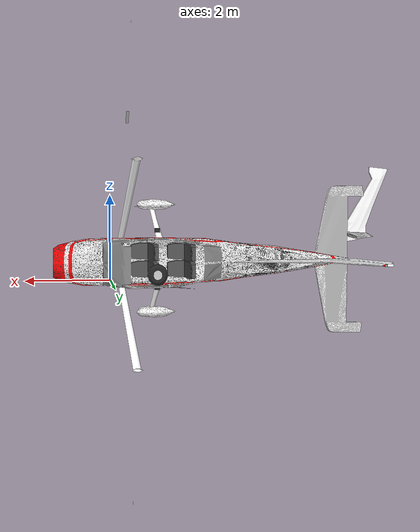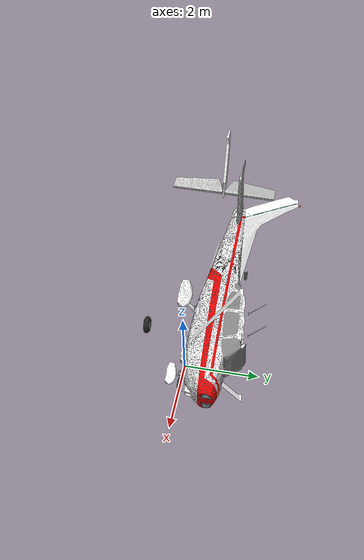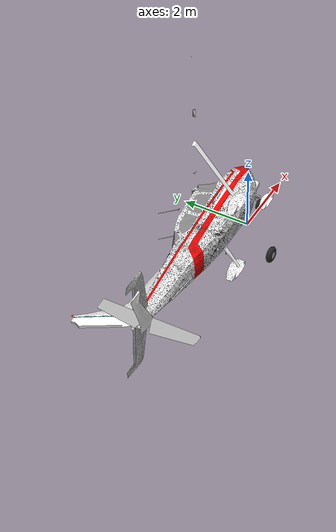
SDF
<?xml version="1.0" ?>
<sdf version="1.5">
  <model name="cessna_c172">
    <pose>0 0 0.495 0 0 0</pose>
    <!-- Body of the plane -->
    <link name="body">
      <inertial>
        <mass>680.389</mass>
        <inertia>
          <ixx>1285.315427874</ixx>
          <ixy>0.0</ixy>
          <iyy>1824.930976707</iyy>
          <ixz>0.0</ixz>
          <iyz>0.0</iyz>
          <izz>2666.893931043</izz>
        </inertia>
        <pose>-0.0414 0 0.9271 0 0 0</pose>
      </inertial>

      <collision name="collision">
        <geometry>
          <mesh>
            <uri>model://cessna/meshes/body-test-2.dae</uri>
          </mesh>
        </geometry>
      </collision>

      <visual name="visual">
        <geometry>
          <mesh>
            <uri>model://cessna/meshes/body-test-2.dae</uri>
          </mesh>
        </geometry>
      </visual>

      <!-- Debug - Centers of pressure -->

    </link>

    <link name="left_aileron">
      <inertial>
        <mass>2</mass>
        <inertia>
          <ixx>0.8434</ixx>
          <ixy>0.0</ixy>
          <iyy>0.0119</iyy>
          <ixz>0.0</ixz>
          <iyz>0.0</iyz>
          <izz>0.855</izz>
        </inertia>
        <pose>-1.65 3.7 1.5 0.05 0 -0.12</pose>
      </inertial>

      <collision name="collision">
        <geometry>
          <mesh>
            <uri>model://cessna/meshes/left_aileron.dae</uri>
          </mesh>
        </geometry>
      </collision>

    </link>

    <link name="left_flap">
      <inertial>
        <mass>2</mass>
        <inertia>
          <ixx>0.6747</ixx>
          <ixy>0.0</ixy>
          <iyy>0.0242</iyy>
          <ixz>0.0</ixz>
          <iyz>0.0</iyz>
          <izz>0.6962</izz>
        </inertia>
        <pose>-1.8 1.55 1.43 0.02 0 0</pose>
      </inertial>

      <collision name="collision">
        <geometry>
          <mesh>
            <uri>model://cessna/meshes/left_flap.dae</uri>
          </mesh>
        </geometry>
      </collision>

    </link>

    <link name="right_aileron">
      <inertial>
        <mass>2</mass>
        <inertia>
          <ixx>0.8434</ixx>
          <ixy>0.0</ixy>
          <iyy>0.0119</iyy>
          <ixz>0.0</ixz>
          <iyz>0.0</iyz>
          <izz>0.855</izz>
        </inertia>
        <pose>-1.65 -3.7 1.5 -0.05 0 0.12</pose>
      </inertial>

      <collision name="collision">
        <geometry>
          <mesh>
            <uri>model://cessna/meshes/right_aileron.dae</uri>
          </mesh>
        </geometry>
      </collision>

    </link>

    <link name="right_flap">
      <inertial>
        <mass>2</mass>
        <inertia>
          <ixx>0.6747</ixx>
          <ixy>0.0</ixy>
          <iyy>0.0242</iyy>
          <ixz>0.0</ixz>
          <iyz>0.0</iyz>
          <izz>0.6962</izz>
        </inertia>
        <pose>-1.8 -1.55 1.43 -0.02 0 0</pose>
      </inertial>

      <collision name="collision">
        <geometry>
          <mesh>
            <uri>model://cessna/meshes/right_flap.dae</uri>
          </mesh>
        </geometry>
      </collision>

    </link>

    <link name="elevators">
      <inertial>
        <mass>2</mass>
        <inertia>
          <ixx>1.5008</ixx>
          <ixy>0.0</ixy>
          <iyy>0.0274</iyy>
          <ixz>0.0</ixz>
          <iyz>0.0</iyz>
          <izz>1.5266</izz>
        </inertia>
        <pose>-5.75 0 0.57 0 0 0</pose>
      </inertial>

      <collision name="collision">
        <geometry>
          <mesh>
            <uri>model://cessna/meshes/elevators.dae</uri>
          </mesh>
        </geometry>
      </collision>

      <visual name="visual">
        <geometry>
          <mesh>
            <uri>model://cessna/meshes/elevators.dae</uri>
          </mesh>
        </geometry>
      </visual>
    </link>

    <link name="rudder">
      <inertial>
        <mass>2</mass>
        <inertia>
          <ixx>0.4708</ixx>
          <ixy>0.0</ixy>
          <iyy>0.5208</iyy>
          <ixz>0.0</ixz>
          <iyz>0.0</iyz>
          <izz>0.0508</izz>
        </inertia>
        <pose>-6.1 0 1.3 0 -0.35 0</pose>
      </inertial>

      <collision name="collision">
        <geometry>
          <mesh>
            <uri>model://cessna/meshes/rudder.dae</uri>
          </mesh>
        </geometry>
      </collision>

      <visual name="visual">
        <geometry>
          <mesh>
            <uri>model://cessna/meshes/rudder.dae</uri>
          </mesh>
        </geometry>
      </visual>
    </link>

    <link name="propeller">
      <pose>1.79 0 0.855 0 0 0</pose>
      <inertial>
        <mass>18.37</mass>
        <inertia>
          <ixx>7.5067</ixx>
          <ixy>0</ixy>
          <iyy>7.5150</iyy>
          <ixz>0</ixz>
          <iyz>0</iyz>
          <izz>0.068275</izz>
        </inertia>
        <pose>-0.35 0 0 0 0 0</pose>
      </inertial>

      <collision name="collision">
        <geometry>
          <!-- In case a simple shape is preferred -->
          <mesh>
            <uri>model://cessna/meshes/cessna_prop.dae</uri>
          </mesh>
        </geometry>
      </collision>
    </link>

    <link name="front_wheel">
      <inertial>
        <mass>2</mass>
        <inertia>
          <ixx>0.01786</ixx>
          <ixy>0</ixy>
          <iyy>0.01786</iyy>
          <ixz>0</ixz>
          <iyz>0</iyz>
          <izz>0.0324</izz>
        </inertia>
        <pose>0.712 0 -0.313 1.570795 0 0</pose>
      </inertial>
      <collision name="collision">
        <pose>0.712 0 -0.313 1.570795 0 0</pose>
        <geometry>
          <cylinder>
              <radius>0.18</radius>
              <length>0.1</length>
          </cylinder>
        </geometry>
        <surface>
          <friction>
            <ode>
              <mu>0.3</mu>
              <mu2>0.3</mu2>
            </ode>
          </friction>
          <contact>
            <ode>
              <max_vel>0.1</max_vel>
              <min_depth>0.001</min_depth>
            </ode>
          </contact>
        </surface>
      </collision>

      <visual name="visual">
        <geometry>
          <mesh>
            <uri>model://cessna/meshes/cessna_front_wheel.dae</uri>
          </mesh>
        </geometry>
      </visual>
    </link>

    <link name="rear_left_wheel">
      <inertial>
        <mass>2</mass>
        <inertia>
          <ixx>0.035516</ixx>
          <ixy>0</ixy>
          <iyy>0.035516</iyy>
          <ixz>0</ixz>
          <iyz>0</iyz>
          <izz>0.0625</izz>
        </inertia>
        <pose>-1 1.27 -0.25 1.570795 0 0</pose>
      </inertial>
      <collision name="collision">
        <pose>-1 1.27 -0.25 1.570795 0 0</pose>
        <geometry>
          <cylinder>
              <radius>0.25</radius>
              <length>0.16</length>
          </cylinder>
        </geometry>
        <surface>
          <friction>
            <ode>
              <mu>0.3</mu>
              <mu2>0.3</mu2>
            </ode>
          </friction>
          <contact>
            <ode>
              <max_vel>0.1</max_vel>
              <min_depth>0.001</min_depth>
            </ode>
          </contact>
        </surface>
      </collision>

      <visual name="visual">
        <geometry>
          <mesh>
            <uri>model://cessna/meshes/cessna_rear_left_wheel.dae</uri>
          </mesh>
        </geometry>
      </visual>
    </link>

    <link name="rear_right_wheel">
      <inertial>
        <mass>2</mass>
        <inertia>
          <ixx>0.035516</ixx>
          <ixy>0</ixy>
          <iyy>0.035516</iyy>
          <ixz>0</ixz>
          <iyz>0</iyz>
          <izz>0.0625</izz>
        </inertia>
        <pose>-1 -1.27 -0.25 1.570795 0 0</pose>
      </inertial>
      <collision name="collision">
        <pose>-1 -1.27 -0.25 1.570795 0 0</pose>
        <geometry>
          <cylinder>
              <radius>0.25</radius>
              <length>0.16</length>
          </cylinder>
        </geometry>
        <surface>
          <friction>
            <ode>
              <mu>0.3</mu>
              <mu2>0.3</mu2>
            </ode>
          </friction>
          <contact>
            <ode>
              <max_vel>0.1</max_vel>
              <min_depth>0.001</min_depth>
            </ode>
          </contact>
        </surface>
      </collision>

      <visual name="visual">
        <geometry>
          <mesh>
            <uri>model://cessna/meshes/cessna_rear_right_wheel.dae</uri>
          </mesh>
        </geometry>
      </visual>
    </link>

    <!-- Joint to move the left flap -->
    <joint name='left_flap_joint' type='revolute'>
      <parent>body</parent>
      <child>left_flap</child>
      <pose>-1.6 1.55 1.43 0.02 0 0</pose>
      <axis>
        <xyz>0 1 0</xyz>
        <limit>
          <!-- -30/+30 deg. -->
          <lower>-0.53</lower>
          <upper>0.53</upper>
          <effort>-1</effort>
          <velocity>-1</velocity>
        </limit>
        <dynamics>
          <damping>1.000</damping>
        </dynamics>
      </axis>
      <physics>
        <ode>
          <implicit_spring_damper>1</implicit_spring_damper>
        </ode>
      </physics>
    </joint>

    <!-- Joint to move the left aileron -->
    <joint name='left_aileron_joint' type='revolute'>
      <parent>body</parent>
      <child>left_aileron</child>
      <pose>-1.45 3.7 1.5 0.05 0 -0.12</pose>
      <axis>
        <xyz>0 1 0</xyz>
        <limit>
          <!-- -30/+30 deg. -->
          <lower>-0.53</lower>
          <upper>0.53</upper>
          <effort>-1</effort>
          <velocity>-1</velocity>
        </limit>
        <dynamics>
          <damping>1.000</damping>
        </dynamics>
      </axis>
      <physics>
        <ode>
          <implicit_spring_damper>1</implicit_spring_damper>
        </ode>
      </physics>
    </joint>

    <!-- Joint to move the right flap -->
    <joint name='right_flap_joint' type='revolute'>
      <parent>body</parent>
      <child>right_flap</child>
      <pose>-1.6 -1.55 1.43 -0.02 0 0</pose>
      <axis>
        <xyz>0 1 0</xyz>
        <limit>
          <!-- -30/+30 deg. -->
          <lower>-0.53</lower>
          <upper>0.53</upper>
          <effort>-1</effort>
          <velocity>-1</velocity>
        </limit>
        <dynamics>
          <damping>1.000</damping>
        </dynamics>
      </axis>
      <physics>
        <ode>
          <implicit_spring_damper>1</implicit_spring_damper>
        </ode>
      </physics>
    </joint>

    <!-- Joint to move the right aileron -->
    <joint name='right_aileron_joint' type='revolute'>
      <parent>body</parent>
      <child>right_aileron</child>
      <pose>-1.45 -3.7 1.5 -0.05 0 0.12</pose>
      <axis>
        <xyz>0 1 0</xyz>
        <limit>
          <!-- -30/+30 deg. -->
          <lower>-0.53</lower>
          <upper>0.53</upper>
          <effort>-1</effort>
          <velocity>-1</velocity>
        </limit>
        <dynamics>
          <damping>1.000</damping>
        </dynamics>
      </axis>
      <physics>
        <ode>
          <implicit_spring_damper>1</implicit_spring_damper>
        </ode>
      </physics>
    </joint>

    <!-- Joint to move the elevators -->
    <joint name='elevators_joint' type='revolute'>
      <parent>body</parent>
      <child>elevators</child>
      <pose>-5.55 0 0.57 0 0 0</pose>
      <axis>
        <xyz>0 1 0</xyz>
        <limit>
          <!-- -30/+30 deg. -->
          <lower>-0.53</lower>
          <upper>0.53</upper>
          <effort>-1</effort>
          <velocity>-1</velocity>
        </limit>
        <dynamics>
          <damping>1.000</damping>
        </dynamics>
      </axis>
      <physics>
        <ode>
          <implicit_spring_damper>1</implicit_spring_damper>
        </ode>
      </physics>
    </joint>

    <!-- Joint to move the rudder -->
    <joint name='rudder_joint' type='revolute'>
      <parent>body</parent>
      <child>rudder</child>
      <pose>-5.9 0 1.3 0 -0.35 0</pose>
      <axis>
        <xyz>0 0 1</xyz>
        <limit>
          <!-- -30/+30 deg. -->
          <lower>-0.53</lower>
          <upper>0.53</upper>
          <effort>-1</effort>
          <velocity>-1</velocity>
        </limit>
        <dynamics>
          <damping>1.000</damping>
        </dynamics>
      </axis>
      <physics>
        <ode>
          <implicit_spring_damper>1</implicit_spring_damper>
        </ode>
      </physics>
    </joint>

    <!-- Joint to make the propeller spin -->
    <joint name='propeller_joint' type='revolute'>
      <parent>body</parent>
      <child>propeller</child>
      <axis>
        <xyz>1 0 0</xyz>
        <limit>
          <lower>-1e+12</lower>
          <upper>1e+12</upper>
          <effort>-1</effort>
          <velocity>-1</velocity>
        </limit>
        <dynamics>
          <damping>0.001</damping>
        </dynamics>
      </axis>
      <physics>
        <ode>
          <implicit_spring_damper>1</implicit_spring_damper>
        </ode>
      </physics>
    </joint>

    <!-- Joint to make the front wheel spin -->
    <joint name='front_wheel_joint' type='revolute'>
      <parent>body</parent>
      <child>front_wheel</child>
      <pose>0.712 0 -0.313 0 0 0</pose>
      <axis>
        <xyz>0 1 0</xyz>
        <limit>
          <lower>-1e+12</lower>
          <upper>1e+12</upper>
          <effort>-1</effort>
          <velocity>-1</velocity>
        </limit>
        <dynamics>
          <damping>0.010</damping>
        </dynamics>
      </axis>
      <physics>
        <ode>
          <implicit_spring_damper>1</implicit_spring_damper>
        </ode>
      </physics>
    </joint>

    <!-- Joint to make the rear left wheel spin -->
    <joint name='rear_left_wheel_joint' type='revolute'>
      <parent>body</parent>
      <child>rear_left_wheel</child>
      <pose>-1 -1.27 -0.25 0 0 0</pose>
      <axis>
        <xyz>0 1 0</xyz>
        <limit>
          <lower>-1e+12</lower>
          <upper>1e+12</upper>
          <effort>-1</effort>
          <velocity>-1</velocity>
        </limit>
        <dynamics>
          <damping>0.010</damping>
        </dynamics>
      </axis>
      <physics>
        <ode>
          <implicit_spring_damper>1</implicit_spring_damper>
        </ode>
      </physics>
    </joint>

    <!-- Joint to make the rear right wheel spin -->
    <joint name='rear_right_wheel_joint' type='revolute'>
      <parent>body</parent>
      <child>rear_right_wheel</child>
      <pose>-1 1.27 -0.25 0 0 0</pose>
      <axis>
        <xyz>0 1 0</xyz>
        <limit>
          <lower>-1e+12</lower>
          <upper>1e+12</upper>
          <effort>-1</effort>
          <velocity>-1</velocity>
        </limit>
        <dynamics>
          <damping>0.010</damping>
        </dynamics>
      </axis>
      <physics>
        <ode>
          <implicit_spring_damper>1</implicit_spring_damper>
        </ode>
      </physics>
    </joint>

  </model>
</sdf>
